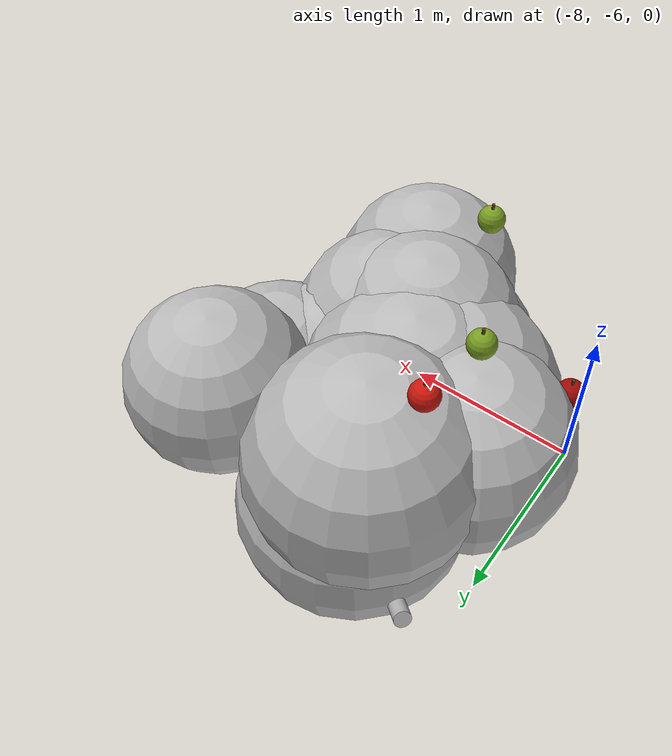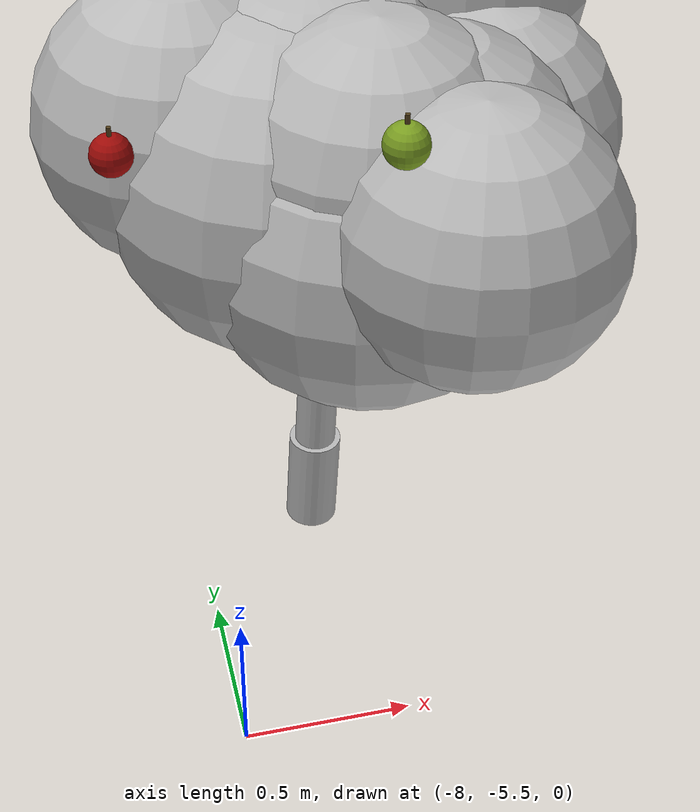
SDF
<sdf version="1.6">
 <world name="default">
  <model name="tree_r1_t4">
   <static>true</static>
   <link name="tree_r1_t4_trunk0">
    <pose>-7.5986 -4.6130 0.1611 0.0001 0.0461 0</pose>
    <collision name="tree_r1_t4_trunk0_c">
     <geometry><cylinder><radius>0.0837</radius><length>0.3416</length></cylinder></geometry>
    </collision>
    <visual name="tree_r1_t4_trunk0_v">
     <geometry><cylinder><radius>0.0837</radius><length>0.3416</length></cylinder></geometry>
     <material>
      <script>
       <uri>model://orchard/materials/scripts</uri>
       <uri>model://orchard/materials/textures</uri>
       <name>Orchard/Bark</name>
      </script>
     </material>
    </visual>
   </link>
   <link name="tree_r1_t4_trunk1">
    <pose>-7.5837 -4.6130 0.4834 0.0001 0.0461 0</pose>
    <visual name="tree_r1_t4_trunk1_v">
     <geometry><cylinder><radius>0.0653</radius><length>0.3416</length></cylinder></geometry>
     <material>
      <script>
       <uri>model://orchard/materials/scripts</uri>
       <uri>model://orchard/materials/textures</uri>
       <name>Orchard/Bark</name>
      </script>
     </material>
    </visual>
   </link>
   <link name="tree_r1_t4_trunk2">
    <pose>-7.5689 -4.6130 0.8057 0.0001 0.0461 0</pose>
    <visual name="tree_r1_t4_trunk2_v">
     <geometry><cylinder><radius>0.0469</radius><length>0.3416</length></cylinder></geometry>
     <material>
      <script>
       <uri>model://orchard/materials/scripts</uri>
       <uri>model://orchard/materials/textures</uri>
       <name>Orchard/Bark</name>
      </script>
     </material>
    </visual>
   </link>
   <link name="tree_r1_t4_br0">
    <pose>-7.2081 -4.6312 1.1416 0.0000 1.1120 -0.0513</pose>
    <visual name="tree_r1_t4_br0_v">
     <geometry><cylinder><radius>0.0227</radius><length>0.7891</length></cylinder></geometry>
     <material>
      <script>
       <uri>model://orchard/materials/scripts</uri>
       <uri>model://orchard/materials/textures</uri>
       <name>Orchard/Bark</name>
      </script>
     </material>
    </visual>
   </link>
   <link name="tree_r1_t4_br1">
    <pose>-7.4878 -4.3604 1.0845 0.0000 1.1506 1.2871</pose>
    <visual name="tree_r1_t4_br1_v">
     <geometry><cylinder><radius>0.0242</radius><length>0.5764</length></cylinder></geometry>
     <material>
      <script>
       <uri>model://orchard/materials/scripts</uri>
       <uri>model://orchard/materials/textures</uri>
       <name>Orchard/Bark</name>
      </script>
     </material>
    </visual>
   </link>
   <link name="tree_r1_t4_br2">
    <pose>-7.8268 -4.3783 1.1896 0.0000 1.0096 2.4174</pose>
    <visual name="tree_r1_t4_br2_v">
     <geometry><cylinder><radius>0.0344</radius><length>0.8369</length></cylinder></geometry>
     <material>
      <script>
       <uri>model://orchard/materials/scripts</uri>
       <uri>model://orchard/materials/textures</uri>
       <name>Orchard/Bark</name>
      </script>
     </material>
    </visual>
   </link>
   <link name="tree_r1_t4_br3">
    <pose>-7.8944 -4.6921 1.1753 0.0000 1.0237 3.3748</pose>
    <visual name="tree_r1_t4_br3_v">
     <geometry><cylinder><radius>0.0322</radius><length>0.8014</length></cylinder></geometry>
     <material>
      <script>
       <uri>model://orchard/materials/scripts</uri>
       <uri>model://orchard/materials/textures</uri>
       <name>Orchard/Bark</name>
      </script>
     </material>
    </visual>
   </link>
   <link name="tree_r1_t4_br4">
    <pose>-7.6333 -4.8019 1.1936 0.0000 0.7278 4.3488</pose>
    <visual name="tree_r1_t4_br4_v">
     <geometry><cylinder><radius>0.0295</radius><length>0.6074</length></cylinder></geometry>
     <material>
      <script>
       <uri>model://orchard/materials/scripts</uri>
       <uri>model://orchard/materials/textures</uri>
       <name>Orchard/Bark</name>
      </script>
     </material>
    </visual>
   </link>
   <link name="tree_r1_t4_br5">
    <pose>-7.4649 -4.8685 1.2644 0.0000 0.7425 5.0736</pose>
    <visual name="tree_r1_t4_br5_v">
     <geometry><cylinder><radius>0.0292</radius><length>0.8077</length></cylinder></geometry>
     <material>
      <script>
       <uri>model://orchard/materials/scripts</uri>
       <uri>model://orchard/materials/textures</uri>
       <name>Orchard/Bark</name>
      </script>
     </material>
    </visual>
   </link>
   <link name="tree_r1_t4_fol0">
    <pose>-7.4760 -4.8816 1.4752 0 0 0</pose>
    <visual name="tree_r1_t4_fol0_v">
     <geometry><sphere><radius>0.4509</radius></sphere></geometry>
     <material>
      <script>
       <uri>model://orchard/materials/scripts</uri>
       <uri>model://orchard/materials/textures</uri>
       <name>Orchard/Foliage1</name>
      </script>
     </material>
    </visual>
   </link>
   <link name="tree_r1_t4_fol1">
    <pose>-7.6527 -4.8495 1.6253 0 0 0</pose>
    <visual name="tree_r1_t4_fol1_v">
     <geometry><sphere><radius>0.4631</radius></sphere></geometry>
     <material>
      <script>
       <uri>model://orchard/materials/scripts</uri>
       <uri>model://orchard/materials/textures</uri>
       <name>Orchard/Foliage3</name>
      </script>
     </material>
    </visual>
   </link>
   <link name="tree_r1_t4_fol2">
    <pose>-7.2369 -4.8169 1.3285 0 0 0</pose>
    <visual name="tree_r1_t4_fol2_v">
     <geometry><sphere><radius>0.3720</radius></sphere></geometry>
     <material>
      <script>
       <uri>model://orchard/materials/scripts</uri>
       <uri>model://orchard/materials/textures</uri>
       <name>Orchard/Foliage0</name>
      </script>
     </material>
    </visual>
   </link>
   <link name="tree_r1_t4_fol3">
    <pose>-7.3881 -5.0846 1.6379 0 0 0</pose>
    <visual name="tree_r1_t4_fol3_v">
     <geometry><sphere><radius>0.3950</radius></sphere></geometry>
     <material>
      <script>
       <uri>model://orchard/materials/scripts</uri>
       <uri>model://orchard/materials/textures</uri>
       <name>Orchard/Foliage3</name>
      </script>
     </material>
    </visual>
   </link>
   <link name="tree_r1_t4_fol4">
    <pose>-7.5533 -5.0971 1.4996 0 0 0</pose>
    <visual name="tree_r1_t4_fol4_v">
     <geometry><sphere><radius>0.4729</radius></sphere></geometry>
     <material>
      <script>
       <uri>model://orchard/materials/scripts</uri>
       <uri>model://orchard/materials/textures</uri>
       <name>Orchard/Foliage1</name>
      </script>
     </material>
    </visual>
   </link>
   <link name="tree_r1_t4_fol5">
    <pose>-7.1146 -4.7126 1.5121 0 0 0</pose>
    <visual name="tree_r1_t4_fol5_v">
     <geometry><sphere><radius>0.3792</radius></sphere></geometry>
     <material>
      <script>
       <uri>model://orchard/materials/scripts</uri>
       <uri>model://orchard/materials/textures</uri>
       <name>Orchard/Foliage3</name>
      </script>
     </material>
    </visual>
   </link>
   <link name="tree_r1_t4_fol6">
    <pose>-7.2791 -4.8668 1.5560 0 0 0</pose>
    <visual name="tree_r1_t4_fol6_v">
     <geometry><sphere><radius>0.3424</radius></sphere></geometry>
     <material>
      <script>
       <uri>model://orchard/materials/scripts</uri>
       <uri>model://orchard/materials/textures</uri>
       <name>Orchard/Foliage3</name>
      </script>
     </material>
    </visual>
   </link>
   <link name="tree_r1_t4_fol7">
    <pose>-7.7365 -4.9171 1.5750 0 0 0</pose>
    <visual name="tree_r1_t4_fol7_v">
     <geometry><sphere><radius>0.4833</radius></sphere></geometry>
     <material>
      <script>
       <uri>model://orchard/materials/scripts</uri>
       <uri>model://orchard/materials/textures</uri>
       <name>Orchard/Foliage1</name>
      </script>
     </material>
    </visual>
   </link>
   <link name="tree_r1_t4_fol8">
    <pose>-7.6495 -4.4626 1.3690 0 0 0</pose>
    <visual name="tree_r1_t4_fol8_v">
     <geometry><sphere><radius>0.4665</radius></sphere></geometry>
     <material>
      <script>
       <uri>model://orchard/materials/scripts</uri>
       <uri>model://orchard/materials/textures</uri>
       <name>Orchard/Foliage3</name>
      </script>
     </material>
    </visual>
   </link>
   <link name="tree_r1_t4_fol9">
    <pose>-7.7226 -4.4525 1.7432 0 0 0</pose>
    <visual name="tree_r1_t4_fol9_v">
     <geometry><sphere><radius>0.4579</radius></sphere></geometry>
     <material>
      <script>
       <uri>model://orchard/materials/scripts</uri>
       <uri>model://orchard/materials/textures</uri>
       <name>Orchard/Foliage3</name>
      </script>
     </material>
    </visual>
   </link>
   <link name="tree_r1_t4_fol10">
    <pose>-7.0957 -4.3915 1.8018 0 0 0</pose>
    <visual name="tree_r1_t4_fol10_v">
     <geometry><sphere><radius>0.3503</radius></sphere></geometry>
     <material>
      <script>
       <uri>model://orchard/materials/scripts</uri>
       <uri>model://orchard/materials/textures</uri>
       <name>Orchard/Foliage3</name>
      </script>
     </material>
    </visual>
   </link>
   <link name="tree_r1_t4_fol11">
    <pose>-7.9641 -4.7485 1.6829 0 0 0</pose>
    <visual name="tree_r1_t4_fol11_v">
     <geometry><sphere><radius>0.4079</radius></sphere></geometry>
     <material>
      <script>
       <uri>model://orchard/materials/scripts</uri>
       <uri>model://orchard/materials/textures</uri>
       <name>Orchard/Foliage1</name>
      </script>
     </material>
    </visual>
   </link>
   <link name="tree_r1_t4_fol12">
    <pose>-7.5422 -5.0940 1.7073 0 0 0</pose>
    <visual name="tree_r1_t4_fol12_v">
     <geometry><sphere><radius>0.3908</radius></sphere></geometry>
     <material>
      <script>
       <uri>model://orchard/materials/scripts</uri>
       <uri>model://orchard/materials/textures</uri>
       <name>Orchard/Foliage3</name>
      </script>
     </material>
    </visual>
   </link>
   <link name="tree_r1_t4_fol13">
    <pose>-7.3649 -5.4002 1.6523 0 0 0</pose>
    <visual name="tree_r1_t4_fol13_v">
     <geometry><sphere><radius>0.3752</radius></sphere></geometry>
     <material>
      <script>
       <uri>model://orchard/materials/scripts</uri>
       <uri>model://orchard/materials/textures</uri>
       <name>Orchard/Foliage2</name>
      </script>
     </material>
    </visual>
   </link>
   <link name="tree_r1_t4_ap0">
    <pose>-7.9045 -4.5133 2.2129 0 0 0</pose>
    <visual name="tree_r1_t4_ap0_v">
     <geometry><sphere><radius>0.0550</radius></sphere></geometry>
     <material>
      <ambient>0.320 0.036 0.020 1.00</ambient>
      <diffuse>0.800 0.090 0.050 1.00</diffuse>
      <specular>0.45 0.35 0.32 1</specular>
     </material>
    </visual>
   </link>
   <link name="tree_r1_t4_st0">
    <pose>-7.9045 -4.5133 2.2652 0 0 0</pose>
    <visual name="tree_r1_t4_st0_v">
     <geometry><cylinder><radius>0.0060</radius><length>0.0500</length></cylinder></geometry>
     <material><ambient>0.128 0.096 0.040 1.00</ambient><diffuse>0.320 0.240 0.100 1.00</diffuse></material>
    </visual>
   </link>
   <link name="tree_r1_t4_ap1">
    <pose>-8.1896 -5.0796 1.8032 0 0 0</pose>
    <visual name="tree_r1_t4_ap1_v">
     <geometry><sphere><radius>0.0550</radius></sphere></geometry>
     <material>
      <ambient>0.248 0.016 0.012 1.00</ambient>
      <diffuse>0.620 0.040 0.030 1.00</diffuse>
      <specular>0.45 0.35 0.32 1</specular>
     </material>
    </visual>
   </link>
   <link name="tree_r1_t4_st1">
    <pose>-8.1896 -5.0796 1.8555 0 0 0</pose>
    <visual name="tree_r1_t4_st1_v">
     <geometry><cylinder><radius>0.0060</radius><length>0.0500</length></cylinder></geometry>
     <material><ambient>0.128 0.096 0.040 1.00</ambient><diffuse>0.320 0.240 0.100 1.00</diffuse></material>
    </visual>
   </link>
   <link name="tree_r1_t4_ap2">
    <pose>-7.5815 -5.4990 2.0041 0 0 0</pose>
    <visual name="tree_r1_t4_ap2_v">
     <geometry><sphere><radius>0.0550</radius></sphere></geometry>
     <material>
      <ambient>0.192 0.248 0.052 1.00</ambient>
      <diffuse>0.480 0.620 0.130 1.00</diffuse>
      <specular>0.45 0.35 0.32 1</specular>
     </material>
    </visual>
   </link>
   <link name="tree_r1_t4_st2">
    <pose>-7.5815 -5.4990 2.0563 0 0 0</pose>
    <visual name="tree_r1_t4_st2_v">
     <geometry><cylinder><radius>0.0060</radius><length>0.0500</length></cylinder></geometry>
     <material><ambient>0.128 0.096 0.040 1.00</ambient><diffuse>0.320 0.240 0.100 1.00</diffuse></material>
    </visual>
   </link>
   <link name="tree_r1_t4_ap3">
    <pose>-7.9144 -4.8554 2.1248 0 0 0</pose>
    <visual name="tree_r1_t4_ap3_v">
     <geometry><sphere><radius>0.0550</radius></sphere></geometry>
     <material>
      <ambient>0.192 0.248 0.052 1.00</ambient>
      <diffuse>0.480 0.620 0.130 1.00</diffuse>
      <specular>0.45 0.35 0.32 1</specular>
     </material>
    </visual>
   </link>
   <link name="tree_r1_t4_st3">
    <pose>-7.9144 -4.8554 2.1771 0 0 0</pose>
    <visual name="tree_r1_t4_st3_v">
     <geometry><cylinder><radius>0.0060</radius><length>0.0500</length></cylinder></geometry>
     <material><ambient>0.128 0.096 0.040 1.00</ambient><diffuse>0.320 0.240 0.100 1.00</diffuse></material>
    </visual>
   </link>
  </model>
 </world>
</sdf>
